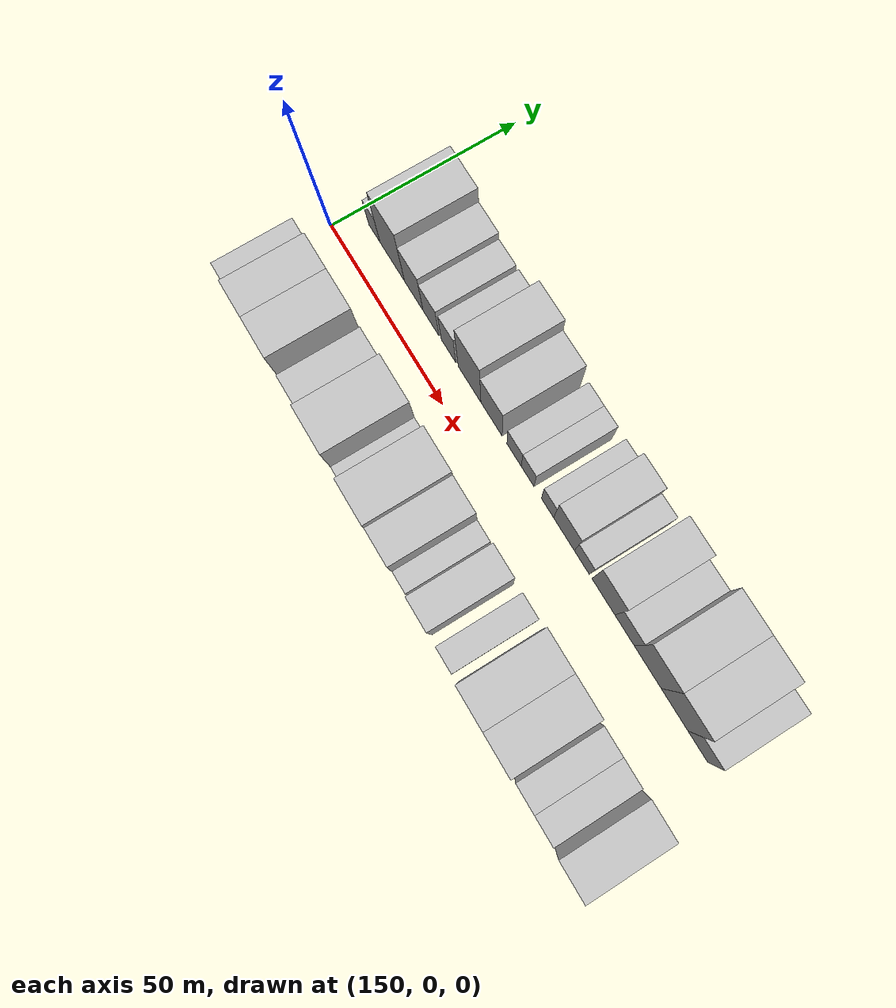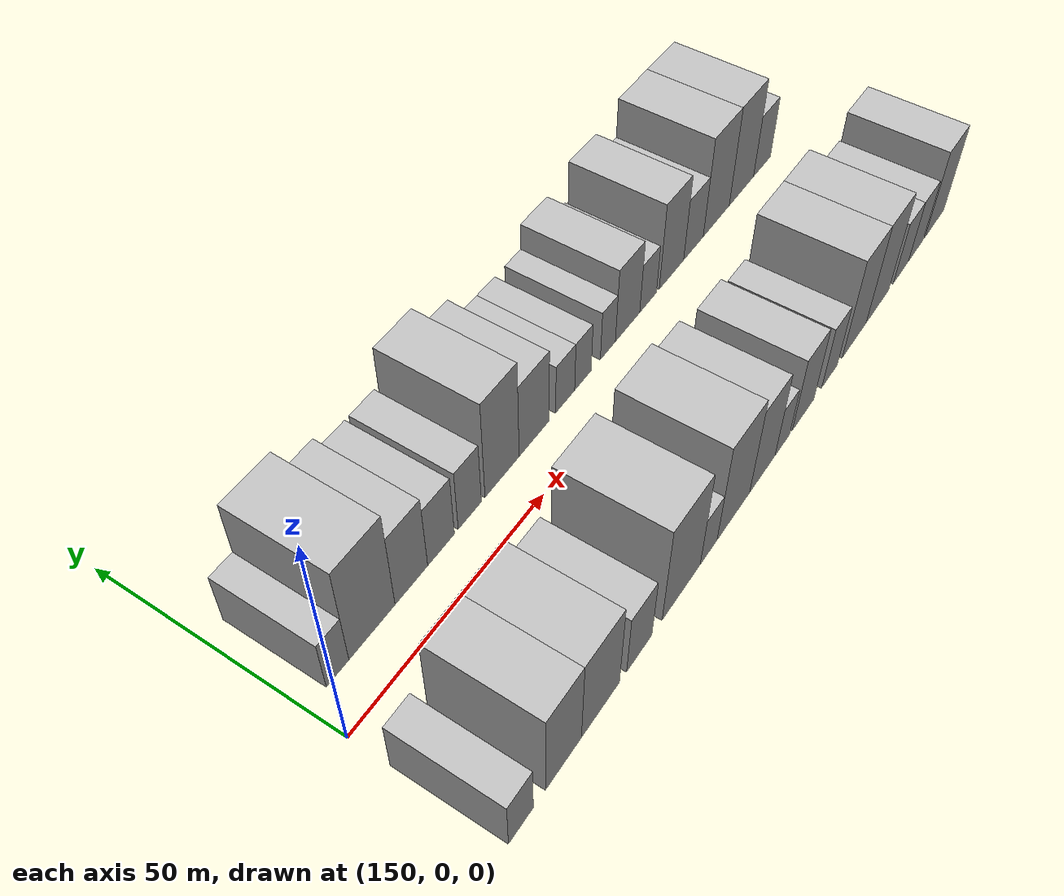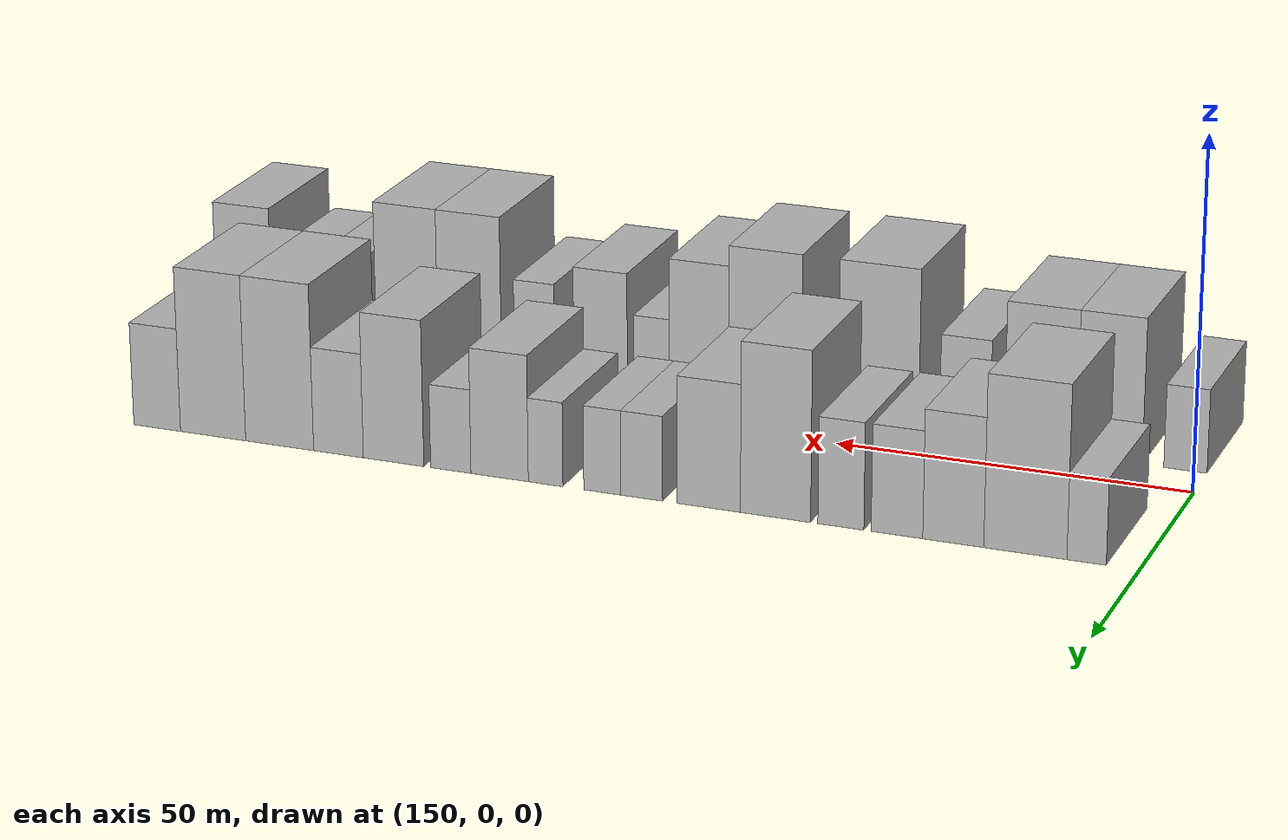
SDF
<sdf version="1.6">
 <world name="default">
  <model name="building_17">
   <static>1</static>
   <pose>156.9843 17.5000 0 0.000000 0.000000 1.570796</pose>
   <link name="link">
    <pose>0 0 6.00 0 0 0</pose>
    <collision name="collision"><geometry><box><size>20.0000 5.2177 12.0000</size></box></geometry></collision>
    <visual name="visual">
     <cast_shadows>0</cast_shadows>
     <geometry><box><size>20.0000 5.2177 12.0000</size></box></geometry>
     <material>
      <script>
       <uri>model://HANNAS_wall/materials/scripts</uri>
       <uri>model://HANNAS_wall/materials/textures</uri>
       <name>vrc/HANNAS_wall</name>
      </script>
     </material>
    </visual>
   </link>
  </model>
  <model name="building_18">
   <static>1</static>
   <pose>165.1413 17.5000 0 0.000000 0.000000 1.570796</pose>
   <link name="link">
    <pose>0 0 12.00 0 0 0</pose>
    <collision name="collision"><geometry><box><size>20.0000 11.0962 24.0000</size></box></geometry></collision>
    <visual name="visual">
     <cast_shadows>0</cast_shadows>
     <geometry><box><size>20.0000 11.0962 24.0000</size></box></geometry>
     <material>
      <script>
       <uri>model://HANNAS_wall/materials/scripts</uri>
       <uri>model://HANNAS_wall/materials/textures</uri>
       <name>vrc/HANNAS_wall</name>
      </script>
     </material>
    </visual>
   </link>
  </model>
  <model name="building_19">
   <static>1</static>
   <pose>174.8093 17.5000 0 0.000000 0.000000 1.570796</pose>
   <link name="link">
    <pose>0 0 9.00 0 0 0</pose>
    <collision name="collision"><geometry><box><size>20.0000 8.2399 18.0000</size></box></geometry></collision>
    <visual name="visual">
     <cast_shadows>0</cast_shadows>
     <geometry><box><size>20.0000 8.2399 18.0000</size></box></geometry>
     <material>
      <script>
       <uri>model://HANNAS_wall/materials/scripts</uri>
       <uri>model://HANNAS_wall/materials/textures</uri>
       <name>vrc/HANNAS_wall</name>
      </script>
     </material>
    </visual>
   </link>
  </model>
  <model name="building_20">
   <static>1</static>
   <pose>182.4433 17.5000 0 0.000000 0.000000 1.570796</pose>
   <link name="link">
    <pose>0 0 7.50 0 0 0</pose>
    <collision name="collision"><geometry><box><size>20.0000 7.0280 15.0000</size></box></geometry></collision>
    <visual name="visual">
     <cast_shadows>0</cast_shadows>
     <geometry><box><size>20.0000 7.0280 15.0000</size></box></geometry>
     <material>
      <script>
       <uri>model://HANNAS_wall/materials/scripts</uri>
       <uri>model://HANNAS_wall/materials/textures</uri>
       <name>vrc/HANNAS_wall</name>
      </script>
     </material>
    </visual>
   </link>
  </model>
  <model name="building_21">
   <static>1</static>
   <pose>190.1219 17.5000 0 0.000000 0.000000 1.570796</pose>
   <link name="link">
    <pose>0 0 7.50 0 0 0</pose>
    <collision name="collision"><geometry><box><size>20.0000 6.3291 15.0000</size></box></geometry></collision>
    <visual name="visual">
     <cast_shadows>0</cast_shadows>
     <geometry><box><size>20.0000 6.3291 15.0000</size></box></geometry>
     <material>
      <script>
       <uri>model://HANNAS_wall/materials/scripts</uri>
       <uri>model://HANNAS_wall/materials/textures</uri>
       <name>vrc/HANNAS_wall</name>
      </script>
     </material>
    </visual>
   </link>
  </model>
  <model name="building_22">
   <static>1</static>
   <pose>199.1633 17.5000 0 0.000000 0.000000 1.570796</pose>
   <link name="link">
    <pose>0 0 12.00 0 0 0</pose>
    <collision name="collision"><geometry><box><size>20.0000 9.7538 24.0000</size></box></geometry></collision>
    <visual name="visual">
     <cast_shadows>0</cast_shadows>
     <geometry><box><size>20.0000 9.7538 24.0000</size></box></geometry>
     <material>
      <script>
       <uri>model://HANNAS_wall/materials/scripts</uri>
       <uri>model://HANNAS_wall/materials/textures</uri>
       <name>vrc/HANNAS_wall</name>
      </script>
     </material>
    </visual>
   </link>
  </model>
  <model name="building_23">
   <static>1</static>
   <pose>208.5142 17.5000 0 0.000000 0.000000 1.570796</pose>
   <link name="link">
    <pose>0 0 9.00 0 0 0</pose>
    <collision name="collision"><geometry><box><size>20.0000 8.9480 18.0000</size></box></geometry></collision>
    <visual name="visual">
     <cast_shadows>0</cast_shadows>
     <geometry><box><size>20.0000 8.9480 18.0000</size></box></geometry>
     <material>
      <script>
       <uri>model://HANNAS_wall/materials/scripts</uri>
       <uri>model://HANNAS_wall/materials/textures</uri>
       <name>vrc/HANNAS_wall</name>
      </script>
     </material>
    </visual>
   </link>
  </model>
  <model name="building_24">
   <static>1</static>
   <pose>217.9626 17.5000 0 0.000000 0.000000 1.570796</pose>
   <link name="link">
    <pose>0 0 6.00 0 0 0</pose>
    <collision name="collision"><geometry><box><size>20.0000 5.9486 12.0000</size></box></geometry></collision>
    <visual name="visual">
     <cast_shadows>0</cast_shadows>
     <geometry><box><size>20.0000 5.9486 12.0000</size></box></geometry>
     <material>
      <script>
       <uri>model://HANNAS_wall/materials/scripts</uri>
       <uri>model://HANNAS_wall/materials/textures</uri>
       <name>vrc/HANNAS_wall</name>
      </script>
     </material>
    </visual>
   </link>
  </model>
  <model name="building_25">
   <static>1</static>
   <pose>223.5839 17.5000 0 0.000000 0.000000 1.570796</pose>
   <link name="link">
    <pose>0 0 6.00 0 0 0</pose>
    <collision name="collision"><geometry><box><size>20.0000 5.2940 12.0000</size></box></geometry></collision>
    <visual name="visual">
     <cast_shadows>0</cast_shadows>
     <geometry><box><size>20.0000 5.2940 12.0000</size></box></geometry>
     <material>
      <script>
       <uri>model://HANNAS_wall/materials/scripts</uri>
       <uri>model://HANNAS_wall/materials/textures</uri>
       <name>vrc/HANNAS_wall</name>
      </script>
     </material>
    </visual>
   </link>
  </model>
  <model name="building_26">
   <static>1</static>
   <pose>231.7309 17.5000 0 0.000000 0.000000 1.570796</pose>
   <link name="link">
    <pose>0 0 6.00 0 0 0</pose>
    <collision name="collision"><geometry><box><size>20.0000 5.0000 12.0000</size></box></geometry></collision>
    <visual name="visual">
     <cast_shadows>0</cast_shadows>
     <geometry><box><size>20.0000 5.0000 12.0000</size></box></geometry>
     <material>
      <script>
       <uri>model://HANNAS_wall/materials/scripts</uri>
       <uri>model://HANNAS_wall/materials/textures</uri>
       <name>vrc/HANNAS_wall</name>
      </script>
     </material>
    </visual>
   </link>
  </model>
  <model name="building_27">
   <static>1</static>
   <pose>238.4052 17.5000 0 0.000000 0.000000 1.570796</pose>
   <link name="link">
    <pose>0 0 9.00 0 0 0</pose>
    <collision name="collision"><geometry><box><size>20.0000 8.3485 18.0000</size></box></geometry></collision>
    <visual name="visual">
     <cast_shadows>0</cast_shadows>
     <geometry><box><size>20.0000 8.3485 18.0000</size></box></geometry>
     <material>
      <script>
       <uri>model://HANNAS_wall/materials/scripts</uri>
       <uri>model://HANNAS_wall/materials/textures</uri>
       <name>vrc/HANNAS_wall</name>
      </script>
     </material>
    </visual>
   </link>
  </model>
  <model name="building_28">
   <static>1</static>
   <pose>245.5368 17.5000 0 0.000000 0.000000 1.570796</pose>
   <link name="link">
    <pose>0 0 6.00 0 0 0</pose>
    <collision name="collision"><geometry><box><size>20.0000 5.9148 12.0000</size></box></geometry></collision>
    <visual name="visual">
     <cast_shadows>0</cast_shadows>
     <geometry><box><size>20.0000 5.9148 12.0000</size></box></geometry>
     <material>
      <script>
       <uri>model://HANNAS_wall/materials/scripts</uri>
       <uri>model://HANNAS_wall/materials/textures</uri>
       <name>vrc/HANNAS_wall</name>
      </script>
     </material>
    </visual>
   </link>
  </model>
  <model name="building_29">
   <static>1</static>
   <pose>253.9768 17.5000 0 0.000000 0.000000 1.570796</pose>
   <link name="link">
    <pose>0 0 10.50 0 0 0</pose>
    <collision name="collision"><geometry><box><size>20.0000 8.9652 21.0000</size></box></geometry></collision>
    <visual name="visual">
     <cast_shadows>0</cast_shadows>
     <geometry><box><size>20.0000 8.9652 21.0000</size></box></geometry>
     <material>
      <script>
       <uri>model://HANNAS_wall/materials/scripts</uri>
       <uri>model://HANNAS_wall/materials/textures</uri>
       <name>vrc/HANNAS_wall</name>
      </script>
     </material>
    </visual>
   </link>
  </model>
  <model name="building_30">
   <static>1</static>
   <pose>262.1839 17.5000 0 0.000000 0.000000 1.570796</pose>
   <link name="link">
    <pose>0 0 7.50 0 0 0</pose>
    <collision name="collision"><geometry><box><size>20.0000 7.4489 15.0000</size></box></geometry></collision>
    <visual name="visual">
     <cast_shadows>0</cast_shadows>
     <geometry><box><size>20.0000 7.4489 15.0000</size></box></geometry>
     <material>
      <script>
       <uri>model://HANNAS_wall/materials/scripts</uri>
       <uri>model://HANNAS_wall/materials/textures</uri>
       <name>vrc/HANNAS_wall</name>
      </script>
     </material>
    </visual>
   </link>
  </model>
  <model name="building_31">
   <static>1</static>
   <pose>271.0399 17.5000 0 0.000000 0.000000 1.570796</pose>
   <link name="link">
    <pose>0 0 12.00 0 0 0</pose>
    <collision name="collision"><geometry><box><size>20.0000 10.2631 24.0000</size></box></geometry></collision>
    <visual name="visual">
     <cast_shadows>0</cast_shadows>
     <geometry><box><size>20.0000 10.2631 24.0000</size></box></geometry>
     <material>
      <script>
       <uri>model://HANNAS_wall/materials/scripts</uri>
       <uri>model://HANNAS_wall/materials/textures</uri>
       <name>vrc/HANNAS_wall</name>
      </script>
     </material>
    </visual>
   </link>
  </model>
  <model name="building_32">
   <static>1</static>
   <pose>281.1523 17.5000 0 0.000000 0.000000 1.570796</pose>
   <link name="link">
    <pose>0 0 12.00 0 0 0</pose>
    <collision name="collision"><geometry><box><size>20.0000 9.9617 24.0000</size></box></geometry></collision>
    <visual name="visual">
     <cast_shadows>0</cast_shadows>
     <geometry><box><size>20.0000 9.9617 24.0000</size></box></geometry>
     <material>
      <script>
       <uri>model://HANNAS_wall/materials/scripts</uri>
       <uri>model://HANNAS_wall/materials/textures</uri>
       <name>vrc/HANNAS_wall</name>
      </script>
     </material>
    </visual>
   </link>
  </model>
  <model name="building_33">
   <static>1</static>
   <pose>289.7270 17.5000 0 0.000000 0.000000 1.570796</pose>
   <link name="link">
    <pose>0 0 7.50 0 0 0</pose>
    <collision name="collision"><geometry><box><size>20.0000 7.1876 15.0000</size></box></geometry></collision>
    <visual name="visual">
     <cast_shadows>0</cast_shadows>
     <geometry><box><size>20.0000 7.1876 15.0000</size></box></geometry>
     <material>
      <script>
       <uri>model://HANNAS_wall/materials/scripts</uri>
       <uri>model://HANNAS_wall/materials/textures</uri>
       <name>vrc/HANNAS_wall</name>
      </script>
     </material>
    </visual>
   </link>
  </model>
  <model name="building_49">
   <static>1</static>
   <pose>153.0710 -17.5000 0 0.000000 0.000000 1.570796</pose>
   <link name="link">
    <pose>0 0 6.00 0 0 0</pose>
    <collision name="collision"><geometry><box><size>20.0000 5.9902 12.0000</size></box></geometry></collision>
    <visual name="visual">
     <cast_shadows>0</cast_shadows>
     <geometry><box><size>20.0000 5.9902 12.0000</size></box></geometry>
     <material>
      <script>
       <uri>model://HANNAS_wall/materials/scripts</uri>
       <uri>model://HANNAS_wall/materials/textures</uri>
       <name>vrc/HANNAS_wall</name>
      </script>
     </material>
    </visual>
   </link>
  </model>
  <model name="building_50">
   <static>1</static>
   <pose>163.6697 -17.5000 0 0.000000 0.000000 1.570796</pose>
   <link name="link">
    <pose>0 0 10.50 0 0 0</pose>
    <collision name="collision"><geometry><box><size>20.0000 9.2074 21.0000</size></box></geometry></collision>
    <visual name="visual">
     <cast_shadows>0</cast_shadows>
     <geometry><box><size>20.0000 9.2074 21.0000</size></box></geometry>
     <material>
      <script>
       <uri>model://HANNAS_wall/materials/scripts</uri>
       <uri>model://HANNAS_wall/materials/textures</uri>
       <name>vrc/HANNAS_wall</name>
      </script>
     </material>
    </visual>
   </link>
  </model>
  <model name="building_51">
   <static>1</static>
   <pose>173.3958 -17.5000 0 0.000000 0.000000 1.570796</pose>
   <link name="link">
    <pose>0 0 10.50 0 0 0</pose>
    <collision name="collision"><geometry><box><size>20.0000 10.2447 21.0000</size></box></geometry></collision>
    <visual name="visual">
     <cast_shadows>0</cast_shadows>
     <geometry><box><size>20.0000 10.2447 21.0000</size></box></geometry>
     <material>
      <script>
       <uri>model://HANNAS_wall/materials/scripts</uri>
       <uri>model://HANNAS_wall/materials/textures</uri>
       <name>vrc/HANNAS_wall</name>
      </script>
     </material>
    </visual>
   </link>
  </model>
  <model name="building_52">
   <static>1</static>
   <pose>184.1411 -17.5000 0 0.000000 0.000000 1.570796</pose>
   <link name="link">
    <pose>0 0 7.50 0 0 0</pose>
    <collision name="collision"><geometry><box><size>20.0000 7.2460 15.0000</size></box></geometry></collision>
    <visual name="visual">
     <cast_shadows>0</cast_shadows>
     <geometry><box><size>20.0000 7.2460 15.0000</size></box></geometry>
     <material>
      <script>
       <uri>model://HANNAS_wall/materials/scripts</uri>
       <uri>model://HANNAS_wall/materials/textures</uri>
       <name>vrc/HANNAS_wall</name>
      </script>
     </material>
    </visual>
   </link>
  </model>
  <model name="building_53">
   <static>1</static>
   <pose>196.5894 -17.5000 0 0.000000 0.000000 1.570796</pose>
   <link name="link">
    <pose>0 0 12.00 0 0 0</pose>
    <collision name="collision"><geometry><box><size>20.0000 11.6504 24.0000</size></box></geometry></collision>
    <visual name="visual">
     <cast_shadows>0</cast_shadows>
     <geometry><box><size>20.0000 11.6504 24.0000</size></box></geometry>
     <material>
      <script>
       <uri>model://HANNAS_wall/materials/scripts</uri>
       <uri>model://HANNAS_wall/materials/textures</uri>
       <name>vrc/HANNAS_wall</name>
      </script>
     </material>
    </visual>
   </link>
  </model>
  <model name="building_54">
   <static>1</static>
   <pose>205.1087 -17.5000 0 0.000000 0.000000 1.570796</pose>
   <link name="link">
    <pose>0 0 6.00 0 0 0</pose>
    <collision name="collision"><geometry><box><size>20.0000 5.3881 12.0000</size></box></geometry></collision>
    <visual name="visual">
     <cast_shadows>0</cast_shadows>
     <geometry><box><size>20.0000 5.3881 12.0000</size></box></geometry>
     <material>
      <script>
       <uri>model://HANNAS_wall/materials/scripts</uri>
       <uri>model://HANNAS_wall/materials/textures</uri>
       <name>vrc/HANNAS_wall</name>
      </script>
     </material>
    </visual>
   </link>
  </model>
  <model name="building_55">
   <static>1</static>
   <pose>213.2072 -17.5000 0 0.000000 0.000000 1.570796</pose>
   <link name="link">
    <pose>0 0 12.00 0 0 0</pose>
    <collision name="collision"><geometry><box><size>20.0000 10.8089 24.0000</size></box></geometry></collision>
    <visual name="visual">
     <cast_shadows>0</cast_shadows>
     <geometry><box><size>20.0000 10.8089 24.0000</size></box></geometry>
     <material>
      <script>
       <uri>model://HANNAS_wall/materials/scripts</uri>
       <uri>model://HANNAS_wall/materials/textures</uri>
       <name>vrc/HANNAS_wall</name>
      </script>
     </material>
    </visual>
   </link>
  </model>
  <model name="building_56">
   <static>1</static>
   <pose>223.0552 -17.5000 0 0.000000 0.000000 1.570796</pose>
   <link name="link">
    <pose>0 0 10.50 0 0 0</pose>
    <collision name="collision"><geometry><box><size>20.0000 8.8871 21.0000</size></box></geometry></collision>
    <visual name="visual">
     <cast_shadows>0</cast_shadows>
     <geometry><box><size>20.0000 8.8871 21.0000</size></box></geometry>
     <material>
      <script>
       <uri>model://HANNAS_wall/materials/scripts</uri>
       <uri>model://HANNAS_wall/materials/textures</uri>
       <name>vrc/HANNAS_wall</name>
      </script>
     </material>
    </visual>
   </link>
  </model>
  <model name="building_57">
   <static>1</static>
   <pose>230.1291 -17.5000 0 0.000000 0.000000 1.570796</pose>
   <link name="link">
    <pose>0 0 6.00 0 0 0</pose>
    <collision name="collision"><geometry><box><size>20.0000 5.2607 12.0000</size></box></geometry></collision>
    <visual name="visual">
     <cast_shadows>0</cast_shadows>
     <geometry><box><size>20.0000 5.2607 12.0000</size></box></geometry>
     <material>
      <script>
       <uri>model://HANNAS_wall/materials/scripts</uri>
       <uri>model://HANNAS_wall/materials/textures</uri>
       <name>vrc/HANNAS_wall</name>
      </script>
     </material>
    </visual>
   </link>
  </model>
  <model name="building_58">
   <static>1</static>
   <pose>237.8130 -17.5000 0 0.000000 0.000000 1.570796</pose>
   <link name="link">
    <pose>0 0 9.00 0 0 0</pose>
    <collision name="collision"><geometry><box><size>20.0000 8.1071 18.0000</size></box></geometry></collision>
    <visual name="visual">
     <cast_shadows>0</cast_shadows>
     <geometry><box><size>20.0000 8.1071 18.0000</size></box></geometry>
     <material>
      <script>
       <uri>model://HANNAS_wall/materials/scripts</uri>
       <uri>model://HANNAS_wall/materials/textures</uri>
       <name>vrc/HANNAS_wall</name>
      </script>
     </material>
    </visual>
   </link>
  </model>
  <model name="building_59">
   <static>1</static>
   <pose>247.9261 -17.5000 0 0.000000 0.000000 1.570796</pose>
   <link name="link">
    <pose>0 0 7.50 0 0 0</pose>
    <collision name="collision"><geometry><box><size>20.0000 6.1191 15.0000</size></box></geometry></collision>
    <visual name="visual">
     <cast_shadows>0</cast_shadows>
     <geometry><box><size>20.0000 6.1191 15.0000</size></box></geometry>
     <material>
      <script>
       <uri>model://HANNAS_wall/materials/scripts</uri>
       <uri>model://HANNAS_wall/materials/textures</uri>
       <name>vrc/HANNAS_wall</name>
      </script>
     </material>
    </visual>
   </link>
  </model>
  <model name="building_60">
   <static>1</static>
   <pose>257.9030 -17.5000 0 0.000000 0.000000 1.570796</pose>
   <link name="link">
    <pose>0 0 12.00 0 0 0</pose>
    <collision name="collision"><geometry><box><size>20.0000 9.8349 24.0000</size></box></geometry></collision>
    <visual name="visual">
     <cast_shadows>0</cast_shadows>
     <geometry><box><size>20.0000 9.8349 24.0000</size></box></geometry>
     <material>
      <script>
       <uri>model://HANNAS_wall/materials/scripts</uri>
       <uri>model://HANNAS_wall/materials/textures</uri>
       <name>vrc/HANNAS_wall</name>
      </script>
     </material>
    </visual>
   </link>
  </model>
  <model name="building_61">
   <static>1</static>
   <pose>267.6570 -17.5000 0 0.000000 0.000000 1.570796</pose>
   <link name="link">
    <pose>0 0 12.00 0 0 0</pose>
    <collision name="collision"><geometry><box><size>20.0000 9.6731 24.0000</size></box></geometry></collision>
    <visual name="visual">
     <cast_shadows>0</cast_shadows>
     <geometry><box><size>20.0000 9.6731 24.0000</size></box></geometry>
     <material>
      <script>
       <uri>model://HANNAS_wall/materials/scripts</uri>
       <uri>model://HANNAS_wall/materials/textures</uri>
       <name>vrc/HANNAS_wall</name>
      </script>
     </material>
    </visual>
   </link>
  </model>
  <model name="building_62">
   <static>1</static>
   <pose>277.8860 -17.5000 0 0.000000 0.000000 1.570796</pose>
   <link name="link">
    <pose>0 0 7.50 0 0 0</pose>
    <collision name="collision"><geometry><box><size>20.0000 6.7848 15.0000</size></box></geometry></collision>
    <visual name="visual">
     <cast_shadows>0</cast_shadows>
     <geometry><box><size>20.0000 6.7848 15.0000</size></box></geometry>
     <material>
      <script>
       <uri>model://HANNAS_wall/materials/scripts</uri>
       <uri>model://HANNAS_wall/materials/textures</uri>
       <name>vrc/HANNAS_wall</name>
      </script>
     </material>
    </visual>
   </link>
  </model>
  <model name="building_63">
   <static>1</static>
   <pose>284.6434 -17.5000 0 0.000000 0.000000 1.570796</pose>
   <link name="link">
    <pose>0 0 7.50 0 0 0</pose>
    <collision name="collision"><geometry><box><size>20.0000 6.7299 15.0000</size></box></geometry></collision>
    <visual name="visual">
     <cast_shadows>0</cast_shadows>
     <geometry><box><size>20.0000 6.7299 15.0000</size></box></geometry>
     <material>
      <script>
       <uri>model://HANNAS_wall/materials/scripts</uri>
       <uri>model://HANNAS_wall/materials/textures</uri>
       <name>vrc/HANNAS_wall</name>
      </script>
     </material>
    </visual>
   </link>
  </model>
  <model name="building_64">
   <static>1</static>
   <pose>293.4710 -17.5000 0 0.000000 0.000000 1.570796</pose>
   <link name="link">
    <pose>0 0 10.50 0 0 0</pose>
    <collision name="collision"><geometry><box><size>20.0000 8.9253 21.0000</size></box></geometry></collision>
    <visual name="visual">
     <cast_shadows>0</cast_shadows>
     <geometry><box><size>20.0000 8.9253 21.0000</size></box></geometry>
     <material>
      <script>
       <uri>model://HANNAS_wall/materials/scripts</uri>
       <uri>model://HANNAS_wall/materials/textures</uri>
       <name>vrc/HANNAS_wall</name>
      </script>
     </material>
    </visual>
   </link>
  </model>
 </world>
</sdf>
